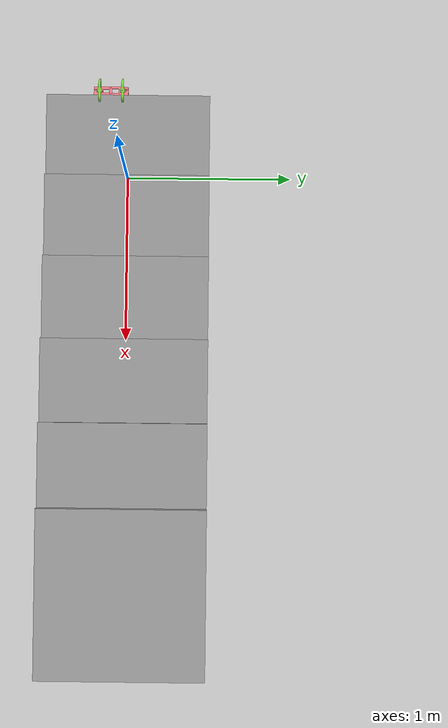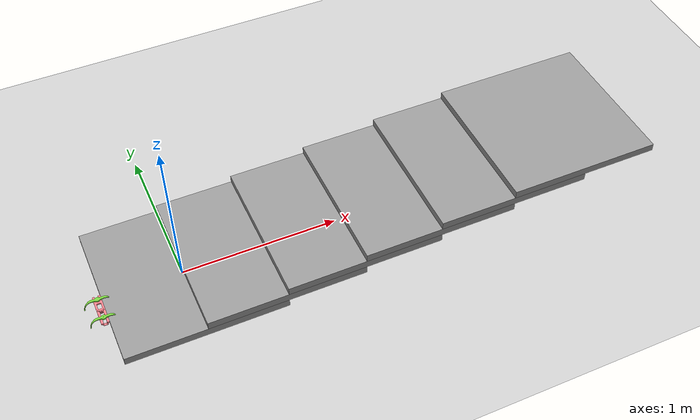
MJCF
<mujoco model="robot_on_stairs_with_ground">
    <compiler angle="radian" coordinate="local"/>
    <option gravity="0 0 -9.81" timestep="0.001"/>

    <asset>
        <!-- Robot assets -->
        <mesh name="controller_torso" file="/projectnb/rlvn/students/rampal11/PATRIQ/EC518-Bark9/envs/PATRIQ/controller_torso.stl" scale="0.001 0.001 0.001"/>
        <mesh name="motor_torso" file="/projectnb/rlvn/students/rampal11/PATRIQ/EC518-Bark9/envs/PATRIQ/motor_torso.stl" scale="0.001 0.001 0.001"/>
        <mesh name="legs" file="/projectnb/rlvn/students/rampal11/PATRIQ/EC518-Bark9/envs/PATRIQ/legs.stl" scale="0.001 0.001 0.001"/>

        <!-- Ground material -->
        <texture name="grid" type="2d" builtin="checker" width="512" height="512" rgb1="0.8 0.8 0.8" rgb2="0.6 0.6 0.6"/>
        <material name="grid_material" texture="grid" texrepeat="5 5" reflectance="0.2"/>
    </asset>

    <worldbody>
        <!-- Ground -->
        <geom name="ground" type="plane" pos="0 0 0" size="5 5 0.25" material="grid_material" rgba="0.8 0.8 0.8 1"/>

        <!-- Stairs -->
        <geom name="stair_1" type="box" pos="0 0 0.025" size="0.5 0.5 0.025" rgba="0.6 0.6 0.6 1"/>
        <geom name="stair_2" type="box" pos="0.5 0 0.075" size="0.5 0.5 0.025" rgba="0.6 0.6 0.6 1"/>
        <geom name="stair_3" type="box" pos="1.0 0 0.125" size="0.5 0.5 0.025" rgba="0.6 0.6 0.6 1"/>
        <geom name="stair_4" type="box" pos="1.5 0 0.175" size="0.5 0.5 0.025" rgba="0.6 0.6 0.6 1"/>
        <geom name="stair_5" type="box" pos="2.0 0 0.225" size="0.5 0.5 0.025" rgba="0.6 0.6 0.6 1"/>
        <geom name="stair_6" type="box" pos="2.5 0 0.275" size="0.5 0.5 0.025" rgba="0.6 0.6 0.6 1"/>

        <!-- Robot -->
        <body name="controller_torso_body" pos="-0.5 0 0.05" euler="-1.57 3.14 0">
            <joint name="FLOATING" type="free"/>
            <geom type="mesh" mesh="controller_torso" rgba="1.0 0.502 0.545 1"/>

            <!-- Motor torso -->
            <body name="motor_torso_body" pos="0 0 0.11">
                <joint name="z_rotation_joint" type="hinge" axis="0 0 1" pos="0.025 0.02 0" range="-1.57 1.57" damping="0.05"/>
                <geom type="mesh" mesh="motor_torso" rgba="1.0 0.502 0.545 1"/>

                <!-- Back Leg -->
                <body name="back_leg" pos="-0.065 0.0497 0.08" euler="3.14 0 0">
                    <joint axis="0 1 0" damping="0.05" name="LEG2" pos="0.088 0.02 0.015" range="-1.5707963 1.5707963" type="hinge"/>
                    <geom type="mesh" mesh="legs" rgba="0.471 0.824 0.243 1"/>
                </body>
            </body>

            <!-- Front Leg -->
            <body name="front_leg" pos="-0.065 0.0497 0.05" euler="3.14 0 0">
                <joint axis="0 1 0" damping="0.05" name="LEG1" pos="0.088 0.02 0.015" range="-1.5707963 1.5707963" type="hinge"/>
                <geom type="mesh" mesh="legs" rgba="0.471 0.824 0.243 1"/>
            </body>
        </body>

        <!-- Light -->
        <light name="main_light" pos="0 0 5" dir="0 0 -1" diffuse="1 1 1" specular="0.3 0.3 0.3" directional="true"/>
    </worldbody>

    <!-- Actuators -->
    <actuator>
        <motor joint="z_rotation_joint" name="z_rotation_joint_act"/>
        <motor joint="LEG1" name="LEG1_act"/>
        <motor joint="LEG2" name="LEG2_act"/>
    </actuator>
</mujoco>
